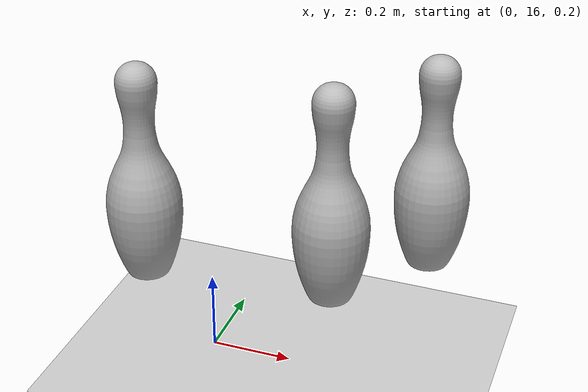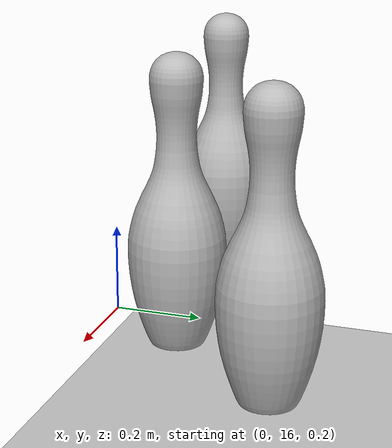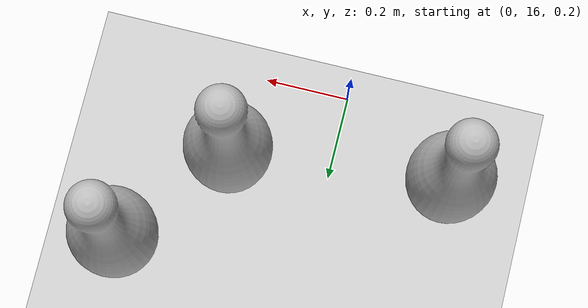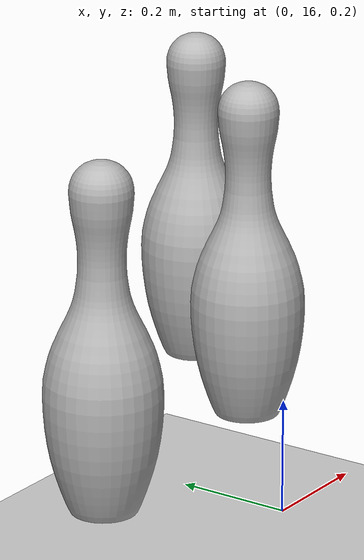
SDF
<sdf version="1.7">
 <world name="default">
  <model name="ground_plane">
   <static>1</static>
   <link name="link">
    <collision name="collision">
     <geometry><plane><normal>0 0 1</normal><size>50 100</size></plane></geometry>
     <surface>
      <contact><collide_bitmask>65535</collide_bitmask></contact>
      <friction><ode><mu>100</mu><mu2>50</mu2></ode></friction>
     </surface>
    </collision>
    <visual name="visual">
     <cast_shadows>0</cast_shadows>
     <geometry><plane><normal>0 0 1</normal><size>50 100</size></plane></geometry>
     <material>
      <script><uri>file://media/materials/scripts/gazebo.material</uri><name>Gazebo/Grey</name></script>
     </material>
    </visual>
   </link>
  </model>
  <model name="bowling_pin_clone">
   <link name="link_0">
    <inertial>
     <mass>1.6</mass>
     <inertia>
      <ixx>0.000212</ixx>
      <ixy>0</ixy>
      <ixz>0</ixz>
      <iyy>3.4e-05</iyy>
      <iyz>0</iyz>
      <izz>0.000212</izz>
     </inertia>
    </inertial>
    <pose>0 0 0 1.5707 -0 0</pose>
    <visual name="visual">
     <geometry><mesh><uri>model://bowling_pin/meshes/bowling-pin.obj</uri><scale>1 1 1</scale></mesh></geometry>
    </visual>
    <collision name="collision">
     <geometry><mesh><uri>model://bowling_pin/meshes/bowling-pin.obj</uri><scale>1 1 1</scale></mesh></geometry>
     <surface>
      <friction>
       <ode><mu>0.4</mu><mu2>0.4</mu2><fdir1>0 0 0</fdir1><slip1>0</slip1><slip2>0</slip2></ode>
       <torsional>
        <coefficient>1</coefficient>
        <patch_radius>0</patch_radius>
        <surface_radius>0</surface_radius>
        <use_patch_radius>1</use_patch_radius>
        <ode><slip>0</slip></ode>
       </torsional>
      </friction>
      <bounce><restitution_coefficient>0</restitution_coefficient><threshold>1e+06</threshold></bounce>
      <contact>
       <collide_without_contact>0</collide_without_contact>
       <collide_without_contact_bitmask>1</collide_without_contact_bitmask>
       <collide_bitmask>1</collide_bitmask>
       <ode>
        <soft_cfm>0</soft_cfm>
        <soft_erp>0.2</soft_erp>
        <kp>1e+13</kp>
        <kd>1</kd>
        <max_vel>1</max_vel>
        <min_depth>0</min_depth>
       </ode>
       <bullet>
        <split_impulse>1</split_impulse>
        <split_impulse_penetration_threshold>-0.01</split_impulse_penetration_threshold>
        <soft_cfm>0</soft_cfm>
        <soft_erp>0.2</soft_erp>
        <kp>1e+13</kp>
        <kd>1</kd>
       </bullet>
      </contact>
     </surface>
    </collision>
   </link>
   <static>0</static>
   <pose>-0.267847 16.1777 0.457979 -1.5e-05 1.4e-05 -0.016315</pose>
  </model>
  <model name="bowling_pin_clone_0">
   <link name="link_0">
    <inertial>
     <mass>1.6</mass>
     <inertia>
      <ixx>0.000212</ixx>
      <ixy>0</ixy>
      <ixz>0</ixz>
      <iyy>3.4e-05</iyy>
      <iyz>0</iyz>
      <izz>0.000212</izz>
     </inertia>
    </inertial>
    <pose>0 0 0 1.5707 -0 0</pose>
    <visual name="visual">
     <geometry><mesh><uri>model://bowling_pin/meshes/bowling-pin.obj</uri><scale>1 1 1</scale></mesh></geometry>
    </visual>
    <collision name="collision">
     <geometry><mesh><uri>model://bowling_pin/meshes/bowling-pin.obj</uri><scale>1 1 1</scale></mesh></geometry>
     <surface>
      <friction>
       <ode><mu>0.4</mu><mu2>0.4</mu2><fdir1>0 0 0</fdir1><slip1>0</slip1><slip2>0</slip2></ode>
       <torsional>
        <coefficient>1</coefficient>
        <patch_radius>0</patch_radius>
        <surface_radius>0</surface_radius>
        <use_patch_radius>1</use_patch_radius>
        <ode><slip>0</slip></ode>
       </torsional>
      </friction>
      <bounce><restitution_coefficient>0</restitution_coefficient><threshold>1e+06</threshold></bounce>
      <contact>
       <collide_without_contact>0</collide_without_contact>
       <collide_without_contact_bitmask>1</collide_without_contact_bitmask>
       <collide_bitmask>1</collide_bitmask>
       <ode>
        <soft_cfm>0</soft_cfm>
        <soft_erp>0.2</soft_erp>
        <kp>1e+13</kp>
        <kd>1</kd>
        <max_vel>1</max_vel>
        <min_depth>0</min_depth>
       </ode>
       <bullet>
        <split_impulse>1</split_impulse>
        <split_impulse_penetration_threshold>-0.01</split_impulse_penetration_threshold>
        <soft_cfm>0</soft_cfm>
        <soft_erp>0.2</soft_erp>
        <kp>1e+13</kp>
        <kd>1</kd>
       </bullet>
      </contact>
     </surface>
    </collision>
   </link>
   <static>0</static>
   <pose>0.231293 16.2284 0.457974 -3.3e-05 1.4e-05 -0.015072</pose>
  </model>
  <model name="bowling_pin_clone_3">
   <link name="link_0">
    <inertial>
     <mass>1.6</mass>
     <inertia>
      <ixx>0.000212</ixx>
      <ixy>0</ixy>
      <ixz>0</ixz>
      <iyy>3.4e-05</iyy>
      <iyz>0</iyz>
      <izz>0.000212</izz>
     </inertia>
    </inertial>
    <pose>0 0 0 1.5707 -0 0</pose>
    <visual name="visual">
     <geometry><mesh><uri>model://bowling_pin/meshes/bowling-pin.obj</uri><scale>1 1 1</scale></mesh></geometry>
    </visual>
    <collision name="collision">
     <geometry><mesh><uri>model://bowling_pin/meshes/bowling-pin.obj</uri><scale>1 1 1</scale></mesh></geometry>
     <surface>
      <friction>
       <ode><mu>0.4</mu><mu2>0.4</mu2><fdir1>0 0 0</fdir1><slip1>0</slip1><slip2>0</slip2></ode>
       <torsional>
        <coefficient>1</coefficient>
        <patch_radius>0</patch_radius>
        <surface_radius>0</surface_radius>
        <use_patch_radius>1</use_patch_radius>
        <ode><slip>0</slip></ode>
       </torsional>
      </friction>
      <bounce><restitution_coefficient>0</restitution_coefficient><threshold>1e+06</threshold></bounce>
      <contact>
       <collide_without_contact>0</collide_without_contact>
       <collide_without_contact_bitmask>1</collide_without_contact_bitmask>
       <collide_bitmask>1</collide_bitmask>
       <ode>
        <soft_cfm>0</soft_cfm>
        <soft_erp>0.2</soft_erp>
        <kp>1e+13</kp>
        <kd>1</kd>
        <max_vel>1</max_vel>
        <min_depth>0</min_depth>
       </ode>
       <bullet>
        <split_impulse>1</split_impulse>
        <split_impulse_penetration_threshold>-0.01</split_impulse_penetration_threshold>
        <soft_cfm>0</soft_cfm>
        <soft_erp>0.2</soft_erp>
        <kp>1e+13</kp>
        <kd>1</kd>
       </bullet>
      </contact>
     </surface>
    </collision>
   </link>
   <static>0</static>
   <pose>0.431412 16.4764 0.457939 -8e-06 4e-06 -0.017197</pose>
  </model>
 </world>
</sdf>
